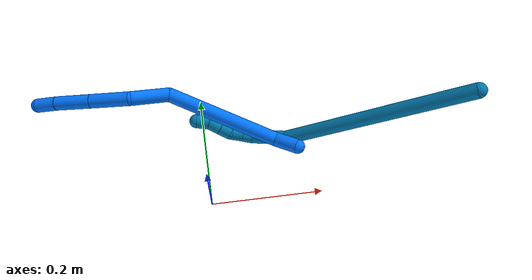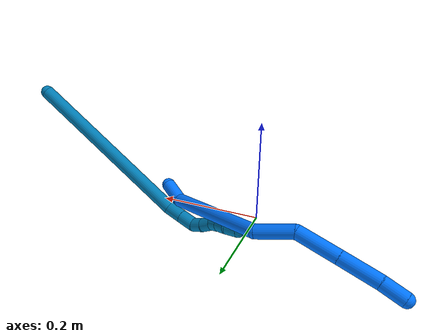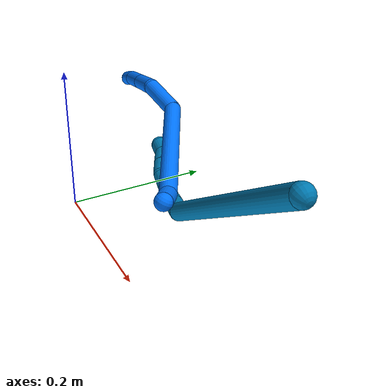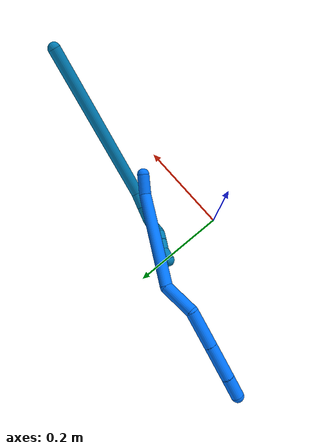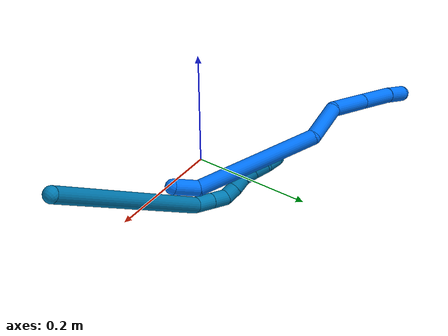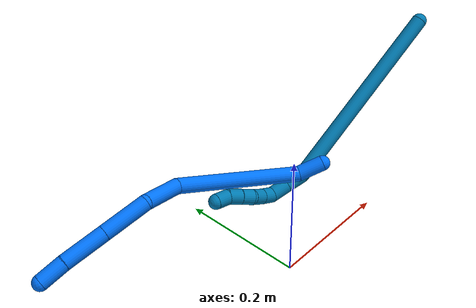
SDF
<sdf version="1.7">
 <world name="default">
  <model name="9">
   <static>0</static>
   <link name="9">
    <collision name="collision-cylinder-e_1_1_4">
     <pose>-0.109588 0.045998 -0.114649 -2.76004 -0.725652 2.20041</pose>
     <geometry><cylinder><radius>0.0125</radius><length>0.330271</length></cylinder></geometry>
     <surface>
      <friction><ode><mu>1.16</mu><mu2>1.16</mu2><slip1>0</slip1><slip2>0</slip2></ode></friction>
      <contact><ode><kp>1e+06</kp><kd>1</kd><max_vel>0</max_vel><min_depth>0.001</min_depth></ode></contact>
     </surface>
    </collision>
    <visual name="visual-cylinder-e_1_1_4">
     <pose>-0.109588 0.045998 -0.114649 -2.76004 -0.725652 2.20041</pose>
     <geometry><cylinder><radius>0.0125</radius><length>0.330271</length></cylinder></geometry>
     <material><ambient>0 0.490196 0.709804 1</ambient></material>
    </visual>
    <collision name="collision-cylinder-e_2_4_5">
     <pose>-0.22703 0.091664 -0.243212 3.11773 -0.513829 -3.05081</pose>
     <geometry><cylinder><radius>0.0125</radius><length>0.031963</length></cylinder></geometry>
     <surface>
      <friction><ode><mu>1.16</mu><mu2>1.16</mu2><slip1>0</slip1><slip2>0</slip2></ode></friction>
      <contact><ode><kp>1e+06</kp><kd>1</kd><max_vel>0</max_vel><min_depth>0.001</min_depth></ode></contact>
     </surface>
    </collision>
    <visual name="visual-cylinder-e_2_4_5">
     <pose>-0.22703 0.091664 -0.243212 3.11773 -0.513829 -3.05081</pose>
     <geometry><cylinder><radius>0.0125</radius><length>0.031963</length></cylinder></geometry>
     <material><ambient>0 0.490196 0.709804 1</ambient></material>
    </visual>
    <collision name="collision-cylinder-e_3_5_6">
     <pose>-0.24214 0.091236 -0.269957 3.1341 -0.514522 -3.11313</pose>
     <geometry><cylinder><radius>0.0125</radius><length>0.029481</length></cylinder></geometry>
     <surface>
      <friction><ode><mu>1.16</mu><mu2>1.16</mu2><slip1>0</slip1><slip2>0</slip2></ode></friction>
      <contact><ode><kp>1e+06</kp><kd>1</kd><max_vel>0</max_vel><min_depth>0.001</min_depth></ode></contact>
     </surface>
    </collision>
    <visual name="visual-cylinder-e_3_5_6">
     <pose>-0.24214 0.091236 -0.269957 3.1341 -0.514522 -3.11313</pose>
     <geometry><cylinder><radius>0.0125</radius><length>0.029481</length></cylinder></geometry>
     <material><ambient>0 0.490196 0.709804 1</ambient></material>
    </visual>
    <collision name="collision-cylinder-e_4_6_7">
     <pose>-0.249246 0.088797 -0.293276 2.92175 0.013708 0.124046</pose>
     <geometry><cylinder><radius>0.0125</radius><length>0.021493</length></cylinder></geometry>
     <surface>
      <friction><ode><mu>1.16</mu><mu2>1.16</mu2><slip1>0</slip1><slip2>0</slip2></ode></friction>
      <contact><ode><kp>1e+06</kp><kd>1</kd><max_vel>0</max_vel><min_depth>0.001</min_depth></ode></contact>
     </surface>
    </collision>
    <visual name="visual-cylinder-e_4_6_7">
     <pose>-0.249246 0.088797 -0.293276 2.92175 0.013708 0.124046</pose>
     <geometry><cylinder><radius>0.0125</radius><length>0.021493</length></cylinder></geometry>
     <material><ambient>0 0.490196 0.709804 1</ambient></material>
    </visual>
    <collision name="collision-cylinder-e_5_7_8">
     <pose>-0.247071 0.084227 -0.314307 2.93351 0.186044 1.45837</pose>
     <geometry><cylinder><radius>0.0125</radius><length>0.021931</length></cylinder></geometry>
     <surface>
      <friction><ode><mu>1.16</mu><mu2>1.16</mu2><slip1>0</slip1><slip2>0</slip2></ode></friction>
      <contact><ode><kp>1e+06</kp><kd>1</kd><max_vel>0</max_vel><min_depth>0.001</min_depth></ode></contact>
     </surface>
    </collision>
    <visual name="visual-cylinder-e_5_7_8">
     <pose>-0.247071 0.084227 -0.314307 2.93351 0.186044 1.45837</pose>
     <geometry><cylinder><radius>0.0125</radius><length>0.021931</length></cylinder></geometry>
     <material><ambient>0 0.490196 0.709804 1</ambient></material>
    </visual>
    <collision name="collision-cylinder-e_6_8_9">
     <pose>-0.245881 0.07742 -0.333875 2.67187 -0.08264 -0.342191</pose>
     <geometry><cylinder><radius>0.0125</radius><length>0.020311</length></cylinder></geometry>
     <surface>
      <friction><ode><mu>1.16</mu><mu2>1.16</mu2><slip1>0</slip1><slip2>0</slip2></ode></friction>
      <contact><ode><kp>1e+06</kp><kd>1</kd><max_vel>0</max_vel><min_depth>0.001</min_depth></ode></contact>
     </surface>
    </collision>
    <visual name="visual-cylinder-e_6_8_9">
     <pose>-0.245881 0.07742 -0.333875 2.67187 -0.08264 -0.342191</pose>
     <geometry><cylinder><radius>0.0125</radius><length>0.020311</length></cylinder></geometry>
     <material><ambient>0 0.490196 0.709804 1</ambient></material>
    </visual>
    <collision name="collision-cylinder-e_7_9_10">
     <pose>-0.248389 0.067889 -0.352501 2.6656 -0.153371 -0.613457</pose>
     <geometry><cylinder><radius>0.0125</radius><length>0.02186</length></cylinder></geometry>
     <surface>
      <friction><ode><mu>1.16</mu><mu2>1.16</mu2><slip1>0</slip1><slip2>0</slip2></ode></friction>
      <contact><ode><kp>1e+06</kp><kd>1</kd><max_vel>0</max_vel><min_depth>0.001</min_depth></ode></contact>
     </surface>
    </collision>
    <visual name="visual-cylinder-e_7_9_10">
     <pose>-0.248389 0.067889 -0.352501 2.6656 -0.153371 -0.613457</pose>
     <geometry><cylinder><radius>0.0125</radius><length>0.02186</length></cylinder></geometry>
     <material><ambient>0 0.490196 0.709804 1</ambient></material>
    </visual>
    <collision name="collision-cylinder-e_8_10_2">
     <pose>-0.252209 0.061797 -0.373183 3.03886 -0.190708 -2.15512</pose>
     <geometry><cylinder><radius>0.0125</radius><length>0.02269</length></cylinder></geometry>
     <surface>
      <friction><ode><mu>1.16</mu><mu2>1.16</mu2><slip1>0</slip1><slip2>0</slip2></ode></friction>
      <contact><ode><kp>1e+06</kp><kd>1</kd><max_vel>0</max_vel><min_depth>0.001</min_depth></ode></contact>
     </surface>
    </collision>
    <visual name="visual-cylinder-e_8_10_2">
     <pose>-0.252209 0.061797 -0.373183 3.03886 -0.190708 -2.15512</pose>
     <geometry><cylinder><radius>0.0125</radius><length>0.02269</length></cylinder></geometry>
     <material><ambient>0 0.490196 0.709804 1</ambient></material>
    </visual>
    <collision name="collision-sphere-2">
     <pose>-0.254359 0.060655 -0.384263 0 -0 0</pose>
     <geometry><sphere><radius>0.0125</radius></sphere></geometry>
     <surface>
      <friction><ode><mu>1.16</mu><mu2>1.16</mu2><slip1>0</slip1><slip2>0</slip2></ode></friction>
      <contact><ode><kp>1e+06</kp><kd>1</kd><max_vel>0</max_vel><min_depth>0.001</min_depth></ode></contact>
     </surface>
    </collision>
    <visual name="visual-sphere-2">
     <pose>-0.254359 0.060655 -0.384263 0 -0 0</pose>
     <geometry><sphere><radius>0.0125</radius></sphere></geometry>
     <material><ambient>0 0.490196 0.709804 1</ambient></material>
    </visual>
    <collision name="collision-sphere-10">
     <pose>-0.250058 0.062939 -0.362102 0 -0 0</pose>
     <geometry><sphere><radius>0.0125</radius></sphere></geometry>
     <surface>
      <friction><ode><mu>1.16</mu><mu2>1.16</mu2><slip1>0</slip1><slip2>0</slip2></ode></friction>
      <contact><ode><kp>1e+06</kp><kd>1</kd><max_vel>0</max_vel><min_depth>0.001</min_depth></ode></contact>
     </surface>
    </collision>
    <visual name="visual-sphere-10">
     <pose>-0.250058 0.062939 -0.362102 0 -0 0</pose>
     <geometry><sphere><radius>0.0125</radius></sphere></geometry>
     <material><ambient>0 0.490196 0.709804 1</ambient></material>
    </visual>
    <collision name="collision-sphere-9">
     <pose>-0.246719 0.072839 -0.3429 0 -0 0</pose>
     <geometry><sphere><radius>0.0125</radius></sphere></geometry>
     <surface>
      <friction><ode><mu>1.16</mu><mu2>1.16</mu2><slip1>0</slip1><slip2>0</slip2></ode></friction>
      <contact><ode><kp>1e+06</kp><kd>1</kd><max_vel>0</max_vel><min_depth>0.001</min_depth></ode></contact>
     </surface>
    </collision>
    <visual name="visual-sphere-9">
     <pose>-0.246719 0.072839 -0.3429 0 -0 0</pose>
     <geometry><sphere><radius>0.0125</radius></sphere></geometry>
     <material><ambient>0 0.490196 0.709804 1</ambient></material>
    </visual>
    <collision name="collision-sphere-4">
     <pose>-0.219175 0.091996 -0.229298 0 -0 0</pose>
     <geometry><sphere><radius>0.0125</radius></sphere></geometry>
     <surface>
      <friction><ode><mu>1.16</mu><mu2>1.16</mu2><slip1>0</slip1><slip2>0</slip2></ode></friction>
      <contact><ode><kp>1e+06</kp><kd>1</kd><max_vel>0</max_vel><min_depth>0.001</min_depth></ode></contact>
     </surface>
    </collision>
    <visual name="visual-sphere-4">
     <pose>-0.219175 0.091996 -0.229298 0 -0 0</pose>
     <geometry><sphere><radius>0.0125</radius></sphere></geometry>
     <material><ambient>0 0.490196 0.709804 1</ambient></material>
    </visual>
    <collision name="collision-sphere-1">
     <geometry><sphere><radius>0.0125</radius></sphere></geometry>
     <surface>
      <friction><ode><mu>1.16</mu><mu2>1.16</mu2><slip1>0</slip1><slip2>0</slip2></ode></friction>
      <contact><ode><kp>1e+06</kp><kd>1</kd><max_vel>0</max_vel><min_depth>0.001</min_depth></ode></contact>
     </surface>
    </collision>
    <visual name="visual-sphere-1">
     <geometry><sphere><radius>0.0125</radius></sphere></geometry>
     <material><ambient>0 0.490196 0.709804 1</ambient></material>
    </visual>
    <collision name="collision-sphere-8">
     <pose>-0.245042 0.082001 -0.324851 0 -0 0</pose>
     <geometry><sphere><radius>0.0125</radius></sphere></geometry>
     <surface>
      <friction><ode><mu>1.16</mu><mu2>1.16</mu2><slip1>0</slip1><slip2>0</slip2></ode></friction>
      <contact><ode><kp>1e+06</kp><kd>1</kd><max_vel>0</max_vel><min_depth>0.001</min_depth></ode></contact>
     </surface>
    </collision>
    <visual name="visual-sphere-8">
     <pose>-0.245042 0.082001 -0.324851 0 -0 0</pose>
     <geometry><sphere><radius>0.0125</radius></sphere></geometry>
     <material><ambient>0 0.490196 0.709804 1</ambient></material>
    </visual>
    <collision name="collision-sphere-5">
     <pose>-0.234886 0.091332 -0.257126 0 -0 0</pose>
     <geometry><sphere><radius>0.0125</radius></sphere></geometry>
     <surface>
      <friction><ode><mu>1.16</mu><mu2>1.16</mu2><slip1>0</slip1><slip2>0</slip2></ode></friction>
      <contact><ode><kp>1e+06</kp><kd>1</kd><max_vel>0</max_vel><min_depth>0.001</min_depth></ode></contact>
     </surface>
    </collision>
    <visual name="visual-sphere-5">
     <pose>-0.234886 0.091332 -0.257126 0 -0 0</pose>
     <geometry><sphere><radius>0.0125</radius></sphere></geometry>
     <material><ambient>0 0.490196 0.709804 1</ambient></material>
    </visual>
    <collision name="collision-sphere-6">
     <pose>-0.249394 0.09114 -0.282789 0 -0 0</pose>
     <geometry><sphere><radius>0.0125</radius></sphere></geometry>
     <surface>
      <friction><ode><mu>1.16</mu><mu2>1.16</mu2><slip1>0</slip1><slip2>0</slip2></ode></friction>
      <contact><ode><kp>1e+06</kp><kd>1</kd><max_vel>0</max_vel><min_depth>0.001</min_depth></ode></contact>
     </surface>
    </collision>
    <visual name="visual-sphere-6">
     <pose>-0.249394 0.09114 -0.282789 0 -0 0</pose>
     <geometry><sphere><radius>0.0125</radius></sphere></geometry>
     <material><ambient>0 0.490196 0.709804 1</ambient></material>
    </visual>
    <collision name="collision-sphere-7">
     <pose>-0.249099 0.086453 -0.303763 0 -0 0</pose>
     <geometry><sphere><radius>0.0125</radius></sphere></geometry>
     <surface>
      <friction><ode><mu>1.16</mu><mu2>1.16</mu2><slip1>0</slip1><slip2>0</slip2></ode></friction>
      <contact><ode><kp>1e+06</kp><kd>1</kd><max_vel>0</max_vel><min_depth>0.001</min_depth></ode></contact>
     </surface>
    </collision>
    <visual name="visual-sphere-7">
     <pose>-0.249099 0.086453 -0.303763 0 -0 0</pose>
     <geometry><sphere><radius>0.0125</radius></sphere></geometry>
     <material><ambient>0 0.490196 0.709804 1</ambient></material>
    </visual>
    <inertial>
     <pose>-0.155022 0.058052 -0.179497 0 -0 0</pose>
     <mass>0.5</mass>
     <inertia>
      <ixx>0.000471</ixx>
      <ixy>0</ixy>
      <ixz>0</ixz>
      <iyy>0.00408</iyy>
      <iyz>0</iyz>
      <izz>0.001137</izz>
     </inertia>
    </inertial>
   </link>
   <pose>0.416363 0.069887 0.22615 -1.98685 -1.0451 -1.22042</pose>
  </model>
  <model name="14">
   <static>0</static>
   <link name="14">
    <collision name="collision-cylinder-e_1_1_4">
     <pose>-0.020844 0.00525 0.000719 -1.43462 -1.32187 1.19205</pose>
     <geometry><cylinder><radius>0.0125</radius><length>0.043014</length></cylinder></geometry>
     <surface>
      <friction><ode><mu>1.16</mu><mu2>1.16</mu2><slip1>0</slip1><slip2>0</slip2></ode></friction>
      <contact><ode><kp>1e+06</kp><kd>1</kd><max_vel>0</max_vel><min_depth>0.001</min_depth></ode></contact>
     </surface>
    </collision>
    <visual name="visual-cylinder-e_1_1_4">
     <pose>-0.020844 0.00525 0.000719 -1.43462 -1.32187 1.19205</pose>
     <geometry><cylinder><radius>0.0125</radius><length>0.043014</length></cylinder></geometry>
     <material><ambient>0 0.462745 1 1</ambient></material>
    </visual>
    <collision name="collision-cylinder-e_2_4_5">
     <pose>-0.122151 0.06074 -0.03523 -2.20128 -0.912729 1.5363</pose>
     <geometry><cylinder><radius>0.0125</radius><length>0.203402</length></cylinder></geometry>
     <surface>
      <friction><ode><mu>1.16</mu><mu2>1.16</mu2><slip1>0</slip1><slip2>0</slip2></ode></friction>
      <contact><ode><kp>1e+06</kp><kd>1</kd><max_vel>0</max_vel><min_depth>0.001</min_depth></ode></contact>
     </surface>
    </collision>
    <visual name="visual-cylinder-e_2_4_5">
     <pose>-0.122151 0.06074 -0.03523 -2.20128 -0.912729 1.5363</pose>
     <geometry><cylinder><radius>0.0125</radius><length>0.203402</length></cylinder></geometry>
     <material><ambient>0 0.462745 1 1</ambient></material>
    </visual>
    <collision name="collision-cylinder-e_3_5_6">
     <pose>-0.218436 0.140801 -0.07624 -1.71538 -0.483468 0.555375</pose>
     <geometry><cylinder><radius>0.0125</radius><length>0.068071</length></cylinder></geometry>
     <surface>
      <friction><ode><mu>1.16</mu><mu2>1.16</mu2><slip1>0</slip1><slip2>0</slip2></ode></friction>
      <contact><ode><kp>1e+06</kp><kd>1</kd><max_vel>0</max_vel><min_depth>0.001</min_depth></ode></contact>
     </surface>
    </collision>
    <visual name="visual-cylinder-e_3_5_6">
     <pose>-0.218436 0.140801 -0.07624 -1.71538 -0.483468 0.555375</pose>
     <geometry><cylinder><radius>0.0125</radius><length>0.068071</length></cylinder></geometry>
     <material><ambient>0 0.462745 1 1</ambient></material>
    </visual>
    <collision name="collision-cylinder-e_4_6_7">
     <pose>-0.263999 0.192357 -0.074896 -1.31492 -0.923841 0.733898</pose>
     <geometry><cylinder><radius>0.0125</radius><length>0.074548</length></cylinder></geometry>
     <surface>
      <friction><ode><mu>1.16</mu><mu2>1.16</mu2><slip1>0</slip1><slip2>0</slip2></ode></friction>
      <contact><ode><kp>1e+06</kp><kd>1</kd><max_vel>0</max_vel><min_depth>0.001</min_depth></ode></contact>
     </surface>
    </collision>
    <visual name="visual-cylinder-e_4_6_7">
     <pose>-0.263999 0.192357 -0.074896 -1.31492 -0.923841 0.733898</pose>
     <geometry><cylinder><radius>0.0125</radius><length>0.074548</length></cylinder></geometry>
     <material><ambient>0 0.462745 1 1</ambient></material>
    </visual>
    <collision name="collision-cylinder-e_5_7_8">
     <pose>-0.32148 0.234158 -0.063905 -1.31232 -0.92845 0.735962</pose>
     <geometry><cylinder><radius>0.0125</radius><length>0.069288</length></cylinder></geometry>
     <surface>
      <friction><ode><mu>1.16</mu><mu2>1.16</mu2><slip1>0</slip1><slip2>0</slip2></ode></friction>
      <contact><ode><kp>1e+06</kp><kd>1</kd><max_vel>0</max_vel><min_depth>0.001</min_depth></ode></contact>
     </surface>
    </collision>
    <visual name="visual-cylinder-e_5_7_8">
     <pose>-0.32148 0.234158 -0.063905 -1.31232 -0.92845 0.735962</pose>
     <geometry><cylinder><radius>0.0125</radius><length>0.069288</length></cylinder></geometry>
     <material><ambient>0 0.462745 1 1</ambient></material>
    </visual>
    <collision name="collision-cylinder-e_6_8_2">
     <pose>-0.36612 0.265409 -0.053751 -1.16179 -0.945859 0.648075</pose>
     <geometry><cylinder><radius>0.0125</radius><length>0.041677</length></cylinder></geometry>
     <surface>
      <friction><ode><mu>1.16</mu><mu2>1.16</mu2><slip1>0</slip1><slip2>0</slip2></ode></friction>
      <contact><ode><kp>1e+06</kp><kd>1</kd><max_vel>0</max_vel><min_depth>0.001</min_depth></ode></contact>
     </surface>
    </collision>
    <visual name="visual-cylinder-e_6_8_2">
     <pose>-0.36612 0.265409 -0.053751 -1.16179 -0.945859 0.648075</pose>
     <geometry><cylinder><radius>0.0125</radius><length>0.041677</length></cylinder></geometry>
     <material><ambient>0 0.462745 1 1</ambient></material>
    </visual>
    <collision name="collision-sphere-2">
     <pose>-0.38302 0.276595 -0.048903 0 -0 0</pose>
     <geometry><sphere><radius>0.0125</radius></sphere></geometry>
     <surface>
      <friction><ode><mu>1.16</mu><mu2>1.16</mu2><slip1>0</slip1><slip2>0</slip2></ode></friction>
      <contact><ode><kp>1e+06</kp><kd>1</kd><max_vel>0</max_vel><min_depth>0.001</min_depth></ode></contact>
     </surface>
    </collision>
    <visual name="visual-sphere-2">
     <pose>-0.38302 0.276595 -0.048903 0 -0 0</pose>
     <geometry><sphere><radius>0.0125</radius></sphere></geometry>
     <material><ambient>0 0.462745 1 1</ambient></material>
    </visual>
    <collision name="collision-sphere-4">
     <pose>-0.041688 0.010499 0.001439 0 -0 0</pose>
     <geometry><sphere><radius>0.0125</radius></sphere></geometry>
     <surface>
      <friction><ode><mu>1.16</mu><mu2>1.16</mu2><slip1>0</slip1><slip2>0</slip2></ode></friction>
      <contact><ode><kp>1e+06</kp><kd>1</kd><max_vel>0</max_vel><min_depth>0.001</min_depth></ode></contact>
     </surface>
    </collision>
    <visual name="visual-sphere-4">
     <pose>-0.041688 0.010499 0.001439 0 -0 0</pose>
     <geometry><sphere><radius>0.0125</radius></sphere></geometry>
     <material><ambient>0 0.462745 1 1</ambient></material>
    </visual>
    <collision name="collision-sphere-1">
     <geometry><sphere><radius>0.0125</radius></sphere></geometry>
     <surface>
      <friction><ode><mu>1.16</mu><mu2>1.16</mu2><slip1>0</slip1><slip2>0</slip2></ode></friction>
      <contact><ode><kp>1e+06</kp><kd>1</kd><max_vel>0</max_vel><min_depth>0.001</min_depth></ode></contact>
     </surface>
    </collision>
    <visual name="visual-sphere-1">
     <geometry><sphere><radius>0.0125</radius></sphere></geometry>
     <material><ambient>0 0.462745 1 1</ambient></material>
    </visual>
    <collision name="collision-sphere-8">
     <pose>-0.349219 0.254223 -0.0586 0 -0 0</pose>
     <geometry><sphere><radius>0.0125</radius></sphere></geometry>
     <surface>
      <friction><ode><mu>1.16</mu><mu2>1.16</mu2><slip1>0</slip1><slip2>0</slip2></ode></friction>
      <contact><ode><kp>1e+06</kp><kd>1</kd><max_vel>0</max_vel><min_depth>0.001</min_depth></ode></contact>
     </surface>
    </collision>
    <visual name="visual-sphere-8">
     <pose>-0.349219 0.254223 -0.0586 0 -0 0</pose>
     <geometry><sphere><radius>0.0125</radius></sphere></geometry>
     <material><ambient>0 0.462745 1 1</ambient></material>
    </visual>
    <collision name="collision-sphere-5">
     <pose>-0.202614 0.110981 -0.071899 0 -0 0</pose>
     <geometry><sphere><radius>0.0125</radius></sphere></geometry>
     <surface>
      <friction><ode><mu>1.16</mu><mu2>1.16</mu2><slip1>0</slip1><slip2>0</slip2></ode></friction>
      <contact><ode><kp>1e+06</kp><kd>1</kd><max_vel>0</max_vel><min_depth>0.001</min_depth></ode></contact>
     </surface>
    </collision>
    <visual name="visual-sphere-5">
     <pose>-0.202614 0.110981 -0.071899 0 -0 0</pose>
     <geometry><sphere><radius>0.0125</radius></sphere></geometry>
     <material><ambient>0 0.462745 1 1</ambient></material>
    </visual>
    <collision name="collision-sphere-6">
     <pose>-0.234257 0.170621 -0.080582 0 -0 0</pose>
     <geometry><sphere><radius>0.0125</radius></sphere></geometry>
     <surface>
      <friction><ode><mu>1.16</mu><mu2>1.16</mu2><slip1>0</slip1><slip2>0</slip2></ode></friction>
      <contact><ode><kp>1e+06</kp><kd>1</kd><max_vel>0</max_vel><min_depth>0.001</min_depth></ode></contact>
     </surface>
    </collision>
    <visual name="visual-sphere-6">
     <pose>-0.234257 0.170621 -0.080582 0 -0 0</pose>
     <geometry><sphere><radius>0.0125</radius></sphere></geometry>
     <material><ambient>0 0.462745 1 1</ambient></material>
    </visual>
    <collision name="collision-sphere-7">
     <pose>-0.293741 0.214093 -0.069209 0 -0 0</pose>
     <geometry><sphere><radius>0.0125</radius></sphere></geometry>
     <surface>
      <friction><ode><mu>1.16</mu><mu2>1.16</mu2><slip1>0</slip1><slip2>0</slip2></ode></friction>
      <contact><ode><kp>1e+06</kp><kd>1</kd><max_vel>0</max_vel><min_depth>0.001</min_depth></ode></contact>
     </surface>
    </collision>
    <visual name="visual-sphere-7">
     <pose>-0.293741 0.214093 -0.069209 0 -0 0</pose>
     <geometry><sphere><radius>0.0125</radius></sphere></geometry>
     <material><ambient>0 0.462745 1 1</ambient></material>
    </visual>
    <inertial>
     <pose>-0.195652 0.127581 -0.049152 0 -0 0</pose>
     <mass>0.5</mass>
     <inertia>
      <ixx>0.00052</ixx>
      <ixy>0</ixy>
      <ixz>0</ixz>
      <iyy>0.001004</iyy>
      <iyz>0</iyz>
      <izz>0.000218</izz>
     </inertia>
    </inertial>
   </link>
   <pose>0.158973 0.066156 0.072933 2.80193 -0.402968 -0.851258</pose>
  </model>
 </world>
</sdf>
